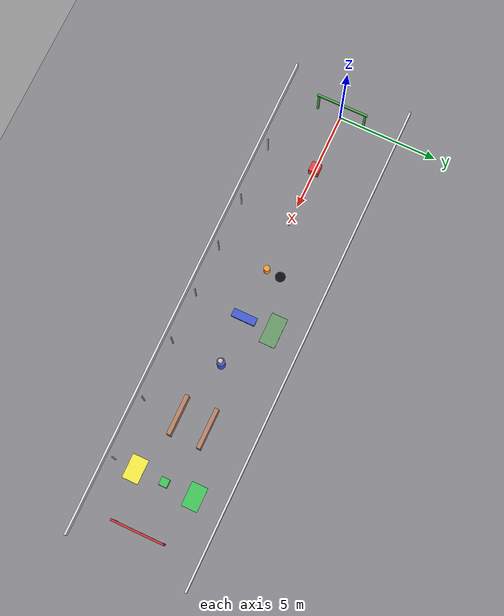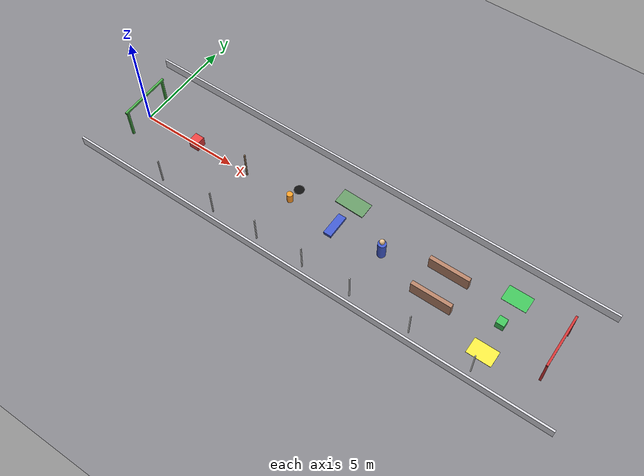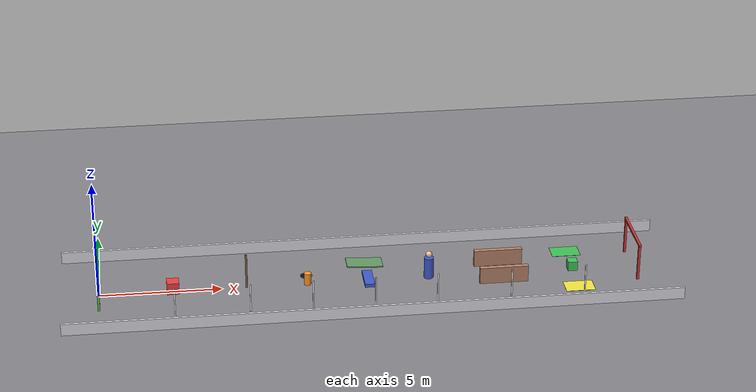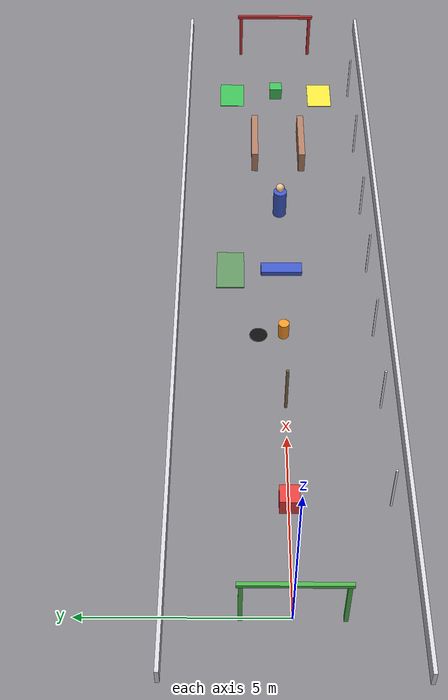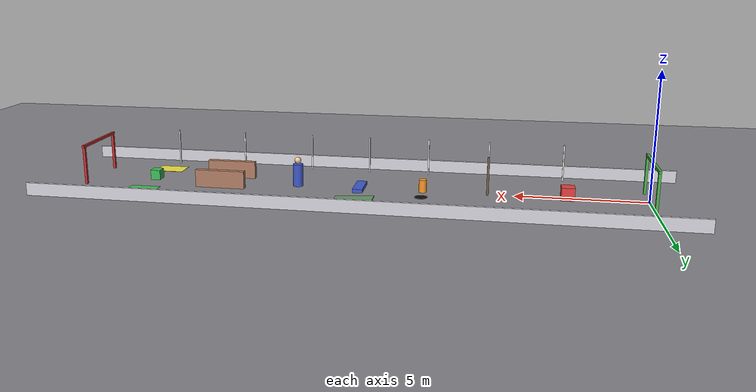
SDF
<?xml version="1.0"?>
<sdf version="1.10">
  <world name="ika_test_world">

    <physics name="1ms" type="ignored">
      <max_step_size>0.002</max_step_size>
      <real_time_factor>1.0</real_time_factor>
    </physics>

    <plugin filename="gz-sim-physics-system" name="gz::sim::systems::Physics"/>
    <plugin filename="gz-sim-user-commands-system" name="gz::sim::systems::UserCommands"/>
    <plugin filename="gz-sim-scene-broadcaster-system" name="gz::sim::systems::SceneBroadcaster"/>
    <plugin filename="gz-sim-contact-system" name="gz::sim::systems::Contact"/>
    <plugin filename="gz-sim-imu-system" name="gz::sim::systems::Imu"/>
    <plugin filename="gz-sim-sensors-system" name="gz::sim::systems::Sensors">
      <render_engine>ogre2</render_engine>
    </plugin>
    <plugin filename="gz-sim-navsat-system" name="gz::sim::systems::NavSat"/>

    <gravity>0 0 -9.81</gravity>
    <magnetic_field>6e-06 2.3e-05 -4.2e-05</magnetic_field>

    <scene>
      <ambient>0.55 0.55 0.6 1</ambient>
      <background>0.65 0.78 0.92 1</background>
      <grid>false</grid>
    </scene>

    <light type="directional" name="sun">
      <cast_shadows>true</cast_shadows>
      <pose>0 0 10 0 0 0</pose>
      <diffuse>0.9 0.9 0.88 1</diffuse>
      <specular>0.2 0.2 0.2 1</specular>
      <direction>-0.4 0.2 -0.9</direction>
    </light>

    <spherical_coordinates>
      <surface_model>EARTH_WGS84</surface_model>
      <world_frame_orientation>ENU</world_frame_orientation>
      <latitude_deg>41.015137</latitude_deg>
      <longitude_deg>28.979530</longitude_deg>
      <elevation>40.0</elevation>
    </spherical_coordinates>

    <!-- ═══════════════════════════════════════════════════════════════
         ZEMIN — gri beton
         ═══════════════════════════════════════════════════════════════ -->
    <model name="ground_plane">
      <static>true</static>
      <link name="link">
        <collision name="c">
          <geometry><plane><normal>0 0 1</normal><size>60 30</size></plane></geometry>
          <surface><friction><ode><mu>1.0</mu><mu2>1.0</mu2></ode></friction></surface>
        </collision>
        <visual name="v">
          <geometry><plane><normal>0 0 1</normal><size>60 30</size></plane></geometry>
          <material><ambient>0.42 0.42 0.44 1</ambient><diffuse>0.52 0.52 0.54 1</diffuse></material>
        </visual>
      </link>
    </model>

    <model name="boundary_wall_north">
      <static>true</static>
      <pose>11.0 3.0 0.25 0 0 0</pose>
      <link name="link">
        <collision name="c"><geometry><box><size>25.0 0.10 0.50</size></box></geometry></collision>
        <visual name="v"><geometry><box><size>25.0 0.10 0.50</size></box></geometry>
          <material><ambient>0.78 0.78 0.80 1</ambient><diffuse>0.85 0.85 0.88 1</diffuse></material>
        </visual>
      </link>
    </model>
    <model name="boundary_wall_south">
      <static>true</static>
      <pose>11.0 -3.0 0.25 0 0 0</pose>
      <link name="link">
        <collision name="c"><geometry><box><size>25.0 0.10 0.50</size></box></geometry></collision>
        <visual name="v"><geometry><box><size>25.0 0.10 0.50</size></box></geometry>
          <material><ambient>0.78 0.78 0.80 1</ambient><diffuse>0.85 0.85 0.88 1</diffuse></material>
        </visual>
      </link>
    </model>

    <!-- ═══════════════════════════════════════════════════════════════
         BASLANGIC KAPISI — yesil, x=0, y simetrik ±1.2
         ═══════════════════════════════════════════════════════════════ -->
    <model name="start_gate_left">
      <static>true</static><pose>0.0 1.2 0.75 0 0 0</pose>
      <link name="link"><visual name="v"><geometry><box><size>0.10 0.10 1.5</size></box></geometry>
        <material><ambient>0.20 0.50 0.20 1</ambient><diffuse>0.30 0.70 0.30 1</diffuse></material>
      </visual></link>
    </model>
    <model name="start_gate_right">
      <static>true</static><pose>0.0 -1.2 0.75 0 0 0</pose>
      <link name="link"><visual name="v"><geometry><box><size>0.10 0.10 1.5</size></box></geometry>
        <material><ambient>0.20 0.50 0.20 1</ambient><diffuse>0.30 0.70 0.30 1</diffuse></material>
      </visual></link>
    </model>
    <model name="start_gate_beam">
      <static>true</static><pose>0.0 0 1.55 0 0 0</pose>
      <link name="link"><visual name="v"><geometry><box><size>0.10 2.6 0.10</size></box></geometry>
        <material><ambient>0.30 0.70 0.30 1</ambient><diffuse>0.30 0.70 0.30 1</diffuse></material>
      </visual></link>
    </model>

    <model name="s1_box_red">
      <static>true</static>
      <pose>3.0 0 0.25 0 0 0</pose>
      <link name="link">
        <collision name="c"><geometry><box><size>0.50 0.50 0.50</size></box></geometry></collision>
        <visual name="v"><geometry><box><size>0.50 0.50 0.50</size></box></geometry>
          <material><ambient>0.80 0.20 0.20 1</ambient><diffuse>0.90 0.25 0.25 1</diffuse></material>
        </visual>
      </link>
    </model>

    <model name="s2_thin_pole">
      <static>true</static>
      <pose>6.0 0 0.75 0 0 0</pose>
      <link name="link">
        <collision name="c"><geometry><cylinder><radius>0.04</radius><length>1.50</length></cylinder></geometry></collision>
        <visual name="v"><geometry><cylinder><radius>0.04</radius><length>1.50</length></cylinder></geometry>
          <material><ambient>0.40 0.30 0.20 1</ambient><diffuse>0.50 0.40 0.30 1</diffuse></material>
        </visual>
      </link>
    </model>

    <model name="s3_warning_cone">
      <static>true</static>
      <pose>8.5 0 0.25 0 0 0</pose>
      <link name="link">
        <collision name="c"><geometry><cylinder><radius>0.15</radius><length>0.50</length></cylinder></geometry></collision>
        <visual name="v"><geometry><cylinder><radius>0.15</radius><length>0.50</length></cylinder></geometry>
          <material><ambient>0.95 0.50 0.10 1</ambient><diffuse>1.00 0.60 0.15 1</diffuse></material>
        </visual>
      </link>
    </model>
    <!-- Pothole görseli — gerçek robotta terrain_perception tespit eder -->
    <model name="s3_pothole_visual">
      <static>true</static>
      <pose>8.5 0.7 0.005 0 0 0</pose>
      <link name="link">
        <visual name="v">
          <geometry><cylinder><radius>0.25</radius><length>0.01</length></cylinder></geometry>
          <material><ambient>0.10 0.10 0.10 1</ambient><diffuse>0.05 0.05 0.05 1</diffuse></material>
        </visual>
      </link>
    </model>

    <model name="s4_kerb_step">
      <static>true</static>
      <pose>11.0 0 0.075 0 0 0</pose>
      <link name="link">
        <collision name="c"><geometry><box><size>0.40 1.20 0.15</size></box></geometry></collision>
        <visual name="v"><geometry><box><size>0.40 1.20 0.15</size></box></geometry>
          <material><ambient>0.20 0.30 0.70 1</ambient><diffuse>0.25 0.35 0.80 1</diffuse></material>
        </visual>
      </link>
    </model>
    <!-- Yumusak rampa alternatif yol (sol, y=+1.5) -->
    <model name="s4_ramp_safe">
      <static>true</static>
      <pose>11.0 1.5 0.025 0 0.05 0</pose>
      <link name="link">
        <visual name="v"><geometry><box><size>1.5 0.8 0.05</size></box></geometry>
          <material><ambient>0.30 0.50 0.30 1</ambient><diffuse>0.40 0.60 0.40 1</diffuse></material>
        </visual>
      </link>
    </model>

    <model name="s5_person">
      <static>true</static>
      <pose>13.5 0 0.0 0 0 0</pose>
      <link name="link">
        <collision name="body"><pose>0 0 0.45 0 0 0</pose>
          <geometry><cylinder><radius>0.20</radius><length>0.90</length></cylinder></geometry></collision>
        <visual name="body_v"><pose>0 0 0.45 0 0 0</pose>
          <geometry><cylinder><radius>0.20</radius><length>0.90</length></cylinder></geometry>
          <material><ambient>0.20 0.30 0.70 1</ambient><diffuse>0.25 0.35 0.80 1</diffuse></material>
        </visual>
        <collision name="head"><pose>0 0 1.05 0 0 0</pose>
          <geometry><sphere><radius>0.13</radius></sphere></geometry></collision>
        <visual name="head_v"><pose>0 0 1.05 0 0 0</pose>
          <geometry><sphere><radius>0.13</radius></sphere></geometry>
          <material><ambient>0.92 0.74 0.55 1</ambient><diffuse>0.95 0.78 0.58 1</diffuse></material>
        </visual>
      </link>
    </model>

    <model name="s6_corridor_wall_left">
      <static>true</static>
      <pose>16.5 0.75 0.35 0 0 0</pose>
      <link name="link">
        <collision name="c"><geometry><box><size>2.0 0.20 0.70</size></box></geometry></collision>
        <visual name="v"><geometry><box><size>2.0 0.20 0.70</size></box></geometry>
          <material><ambient>0.60 0.40 0.30 1</ambient><diffuse>0.70 0.50 0.40 1</diffuse></material>
        </visual>
      </link>
    </model>
    <model name="s6_corridor_wall_right">
      <static>true</static>
      <pose>16.5 -0.75 0.35 0 0 0</pose>
      <link name="link">
        <collision name="c"><geometry><box><size>2.0 0.20 0.70</size></box></geometry></collision>
        <visual name="v"><geometry><box><size>2.0 0.20 0.70</size></box></geometry>
          <material><ambient>0.60 0.40 0.30 1</ambient><diffuse>0.70 0.50 0.40 1</diffuse></material>
        </visual>
      </link>
    </model>

    <model name="s7_box_green">
      <static>true</static>
      <pose>19.5 0 0.20 0 0 0</pose>
      <link name="link">
        <collision name="c"><geometry><box><size>0.40 0.40 0.40</size></box></geometry></collision>
        <visual name="v"><geometry><box><size>0.40 0.40 0.40</size></box></geometry>
          <material><ambient>0.20 0.65 0.30 1</ambient><diffuse>0.25 0.75 0.35 1</diffuse></material>
        </visual>
      </link>
    </model>
    <!-- Riskli zemin patches (visual only) -->
    <model name="s7_surface_safe">
      <static>true</static>
      <pose>19.5 1.5 0.005 0 0 0</pose>
      <link name="link">
        <visual name="v">
          <geometry><box><size>1.2 0.8 0.01</size></box></geometry>
          <material><ambient>0.20 0.65 0.30 1</ambient><diffuse>0.25 0.75 0.35 1</diffuse></material>
        </visual>
      </link>
    </model>
    <model name="s7_surface_caution">
      <static>true</static>
      <pose>19.5 -1.5 0.005 0 0 0</pose>
      <link name="link">
        <visual name="v">
          <geometry><box><size>1.2 0.8 0.01</size></box></geometry>
          <material><ambient>0.85 0.80 0.20 1</ambient><diffuse>0.95 0.90 0.25 1</diffuse></material>
        </visual>
      </link>
    </model>

    <model name="finish_gate_left">
      <static>true</static><pose>22.0 1.2 0.75 0 0 0</pose>
      <link name="link"><visual name="v"><geometry><box><size>0.10 0.10 1.5</size></box></geometry>
        <material><ambient>0.70 0.15 0.15 1</ambient><diffuse>0.80 0.20 0.20 1</diffuse></material>
      </visual></link>
    </model>
    <model name="finish_gate_right">
      <static>true</static><pose>22.0 -1.2 0.75 0 0 0</pose>
      <link name="link"><visual name="v"><geometry><box><size>0.10 0.10 1.5</size></box></geometry>
        <material><ambient>0.70 0.15 0.15 1</ambient><diffuse>0.80 0.20 0.20 1</diffuse></material>
      </visual></link>
    </model>
    <model name="finish_gate_beam">
      <static>true</static><pose>22.0 0 1.55 0 0 0</pose>
      <link name="link"><visual name="v"><geometry><box><size>0.10 2.6 0.10</size></box></geometry>
        <material><ambient>0.80 0.20 0.20 1</ambient><diffuse>0.80 0.20 0.20 1</diffuse></material>
      </visual></link>
    </model>

    <model name="sign_s1"><static>true</static><pose>3.0 -2.5 0.75 0 0 0</pose>
      <link name="link"><visual name="v"><geometry><box><size>0.05 0.05 1.5</size></box></geometry>
        <material><ambient>0.95 0.95 0.95 1</ambient></material></visual></link></model>
    <model name="sign_s2"><static>true</static><pose>6.0 -2.5 0.75 0 0 0</pose>
      <link name="link"><visual name="v"><geometry><box><size>0.05 0.05 1.5</size></box></geometry>
        <material><ambient>0.95 0.95 0.95 1</ambient></material></visual></link></model>
    <model name="sign_s3"><static>true</static><pose>8.5 -2.5 0.75 0 0 0</pose>
      <link name="link"><visual name="v"><geometry><box><size>0.05 0.05 1.5</size></box></geometry>
        <material><ambient>0.95 0.95 0.95 1</ambient></material></visual></link></model>
    <model name="sign_s4"><static>true</static><pose>11.0 -2.5 0.75 0 0 0</pose>
      <link name="link"><visual name="v"><geometry><box><size>0.05 0.05 1.5</size></box></geometry>
        <material><ambient>0.95 0.95 0.95 1</ambient></material></visual></link></model>
    <model name="sign_s5"><static>true</static><pose>13.5 -2.5 0.75 0 0 0</pose>
      <link name="link"><visual name="v"><geometry><box><size>0.05 0.05 1.5</size></box></geometry>
        <material><ambient>0.95 0.95 0.95 1</ambient></material></visual></link></model>
    <model name="sign_s6"><static>true</static><pose>16.5 -2.5 0.75 0 0 0</pose>
      <link name="link"><visual name="v"><geometry><box><size>0.05 0.05 1.5</size></box></geometry>
        <material><ambient>0.95 0.95 0.95 1</ambient></material></visual></link></model>
    <model name="sign_s7"><static>true</static><pose>19.5 -2.5 0.75 0 0 0</pose>
      <link name="link"><visual name="v"><geometry><box><size>0.05 0.05 1.5</size></box></geometry>
        <material><ambient>0.95 0.95 0.95 1</ambient></material></visual></link></model>

  </world>
</sdf>
